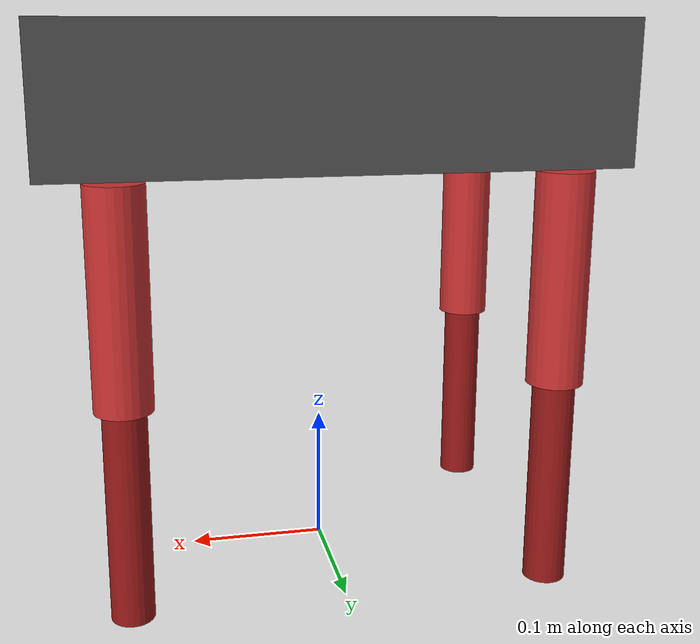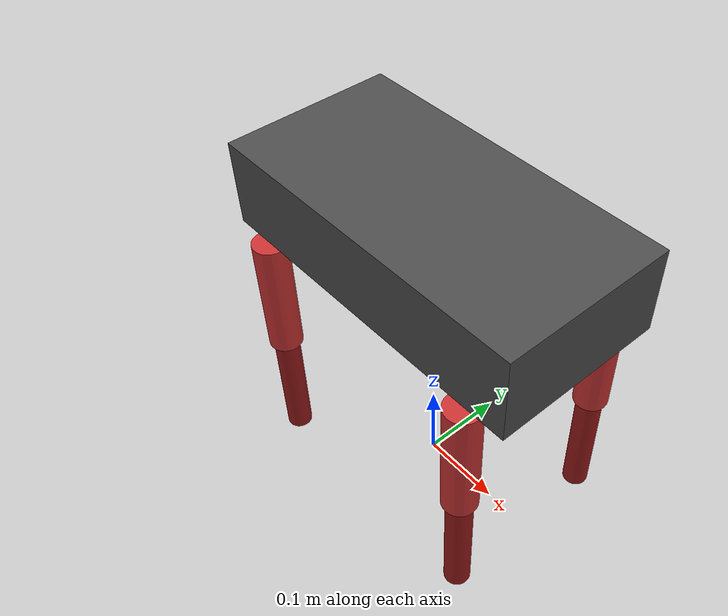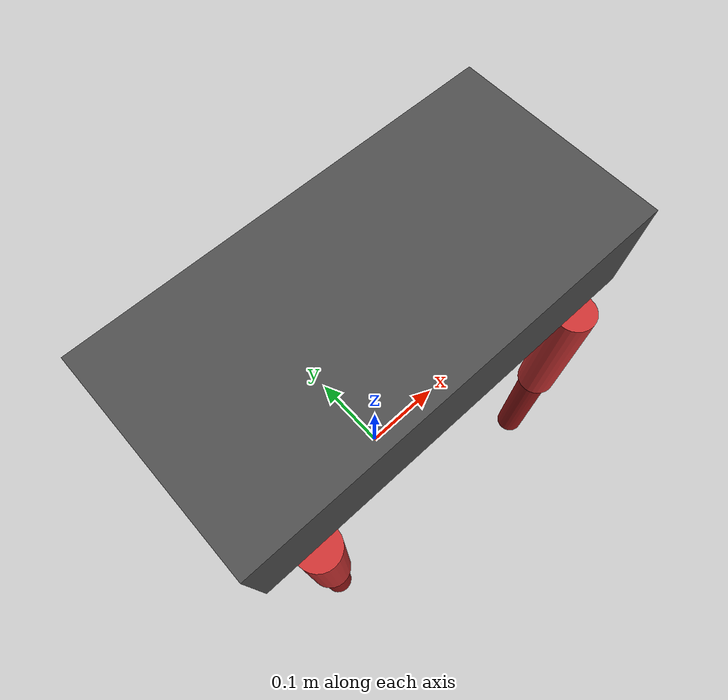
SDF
<?xml version="1.0"?>
<sdf version="1.8">
  <model name="mit_cheetah">
    <pose>0 0 0.35 0 0 0</pose>

    <link name="base_link">
      <inertial>
        <mass>10</mass>
        <inertia>
          <ixx>0.1</ixx><ixy>0</ixy><ixz>0</ixz>
          <iyy>0.5</iyy><iyz>0</iyz>
          <izz>0.5</izz>
        </inertia>
      </inertial>
      <visual name="body">
        <geometry>
          <box><size>0.4 0.2 0.1</size></box>
        </geometry>
        <material>
          <ambient>0.3 0.3 0.3 1</ambient>
          <diffuse>0.3 0.3 0.3 1</diffuse>
        </material>
      </visual>
      <collision name="body_collision">
        <geometry>
          <box><size>0.4 0.2 0.1</size></box>
        </geometry>
      </collision>
    </link>

    <!-- Front Right Leg -->
    <link name="fr_thigh">
      <pose>0.15 -0.1 -0.05 0 0 0</pose>
      <inertial>
        <mass>0.5</mass>
        <inertia>
          <ixx>0.001</ixx><ixy>0</ixy><ixz>0</ixz>
          <iyy>0.001</iyy><iyz>0</iyz>
          <izz>0.0005</izz>
        </inertia>
      </inertial>
      <visual name="thigh">
        <pose>0 0 -0.075 0 0 0</pose>
        <geometry>
          <cylinder><radius>0.02</radius><length>0.15</length></cylinder>
        </geometry>
        <material>
          <ambient>0.8 0.2 0.2 1</ambient>
          <diffuse>0.8 0.2 0.2 1</diffuse>
        </material>
      </visual>
      <collision name="thigh_collision">
        <pose>0 0 -0.075 0 0 0</pose>
        <geometry>
          <cylinder><radius>0.02</radius><length>0.15</length></cylinder>
        </geometry>
      </collision>
    </link>

    <link name="fr_shin">
      <pose>0.15 -0.1 -0.2 0 0 0</pose>
      <inertial>
        <mass>0.3</mass>
        <inertia>
          <ixx>0.001</ixx><ixy>0</ixy><ixz>0</ixz>
          <iyy>0.001</iyy><iyz>0</iyz>
          <izz>0.0003</izz>
        </inertia>
      </inertial>
      <visual name="shin">
        <pose>0 0 -0.075 0 0 0</pose>
        <geometry>
          <cylinder><radius>0.015</radius><length>0.15</length></cylinder>
        </geometry>
        <material>
          <ambient>0.6 0.1 0.1 1</ambient>
          <diffuse>0.6 0.1 0.1 1</diffuse>
        </material>
      </visual>
      <collision name="shin_collision">
        <pose>0 0 -0.075 0 0 0</pose>
        <geometry>
          <cylinder><radius>0.015</radius><length>0.15</length></cylinder>
        </geometry>
      </collision>
      <collision name="foot">
        <pose>0 0 -0.15 0 0 0</pose>
        <geometry>
          <sphere><radius>0.025</radius></sphere>
        </geometry>
        <surface>
          <friction>
            <ode>
              <mu>1.0</mu>
              <mu2>1.0</mu2>
            </ode>
          </friction>
        </surface>
      </collision>
    </link>

    <!-- Front Left Leg -->
    <link name="fl_thigh">
      <pose>0.15 0.1 -0.05 0 0 0</pose>
      <inertial>
        <mass>0.5</mass>
        <inertia>
          <ixx>0.001</ixx><ixy>0</ixy><ixz>0</ixz>
          <iyy>0.001</iyy><iyz>0</iyz>
          <izz>0.0005</izz>
        </inertia>
      </inertial>
      <visual name="thigh">
        <pose>0 0 -0.075 0 0 0</pose>
        <geometry>
          <cylinder><radius>0.02</radius><length>0.15</length></cylinder>
        </geometry>
        <material>
          <ambient>0.8 0.2 0.2 1</ambient>
          <diffuse>0.8 0.2 0.2 1</diffuse>
        </material>
      </visual>
      <collision name="thigh_collision">
        <pose>0 0 -0.075 0 0 0</pose>
        <geometry>
          <cylinder><radius>0.02</radius><length>0.15</length></cylinder>
        </geometry>
      </collision>
    </link>

    <link name="fl_shin">
      <pose>0.15 0.1 -0.2 0 0 0</pose>
      <inertial>
        <mass>0.3</mass>
        <inertia>
          <ixx>0.001</ixx><ixy>0</ixy><ixz>0</ixz>
          <iyy>0.001</iyy><iyz>0</iyz>
          <izz>0.0003</izz>
        </inertia>
      </inertial>
      <visual name="shin">
        <pose>0 0 -0.075 0 0 0</pose>
        <geometry>
          <cylinder><radius>0.015</radius><length>0.15</length></cylinder>
        </geometry>
        <material>
          <ambient>0.6 0.1 0.1 1</ambient>
          <diffuse>0.6 0.1 0.1 1</diffuse>
        </material>
      </visual>
      <collision name="shin_collision">
        <pose>0 0 -0.075 0 0 0</pose>
        <geometry>
          <cylinder><radius>0.015</radius><length>0.15</length></cylinder>
        </geometry>
      </collision>
      <collision name="foot">
        <pose>0 0 -0.15 0 0 0</pose>
        <geometry>
          <sphere><radius>0.025</radius></sphere>
        </geometry>
        <surface>
          <friction>
            <ode>
              <mu>1.0</mu>
              <mu2>1.0</mu2>
            </ode>
          </friction>
        </surface>
      </collision>
    </link>

    <!-- Rear Right Leg -->
    <link name="rr_thigh">
      <pose>-0.15 -0.1 -0.05 0 0 0</pose>
      <inertial>
        <mass>0.5</mass>
        <inertia>
          <ixx>0.001</ixx><ixy>0</ixy><ixz>0</ixz>
          <iyy>0.001</iyy><iyz>0</iyz>
          <izz>0.0005</izz>
        </inertia>
      </inertial>
      <visual name="thigh">
        <pose>0 0 -0.075 0 0 0</pose>
        <geometry>
          <cylinder><radius>0.02</radius><length>0.15</length></cylinder>
        </geometry>
        <material>
          <ambient>0.8 0.2 0.2 1</ambient>
          <diffuse>0.8 0.2 0.2 1</diffuse>
        </material>
      </visual>
      <collision name="thigh_collision">
        <pose>0 0 -0.075 0 0 0</pose>
        <geometry>
          <cylinder><radius>0.02</radius><length>0.15</length></cylinder>
        </geometry>
      </collision>
    </link>

    <link name="rr_shin">
      <pose>-0.15 -0.1 -0.2 0 0 0</pose>
      <inertial>
        <mass>0.3</mass>
        <inertia>
          <ixx>0.001</ixx><ixy>0</ixy><ixz>0</ixz>
          <iyy>0.001</iyy><iyz>0</iyz>
          <izz>0.0003</izz>
        </inertia>
      </inertial>
      <visual name="shin">
        <pose>0 0 -0.075 0 0 0</pose>
        <geometry>
          <cylinder><radius>0.015</radius><length>0.15</length></cylinder>
        </geometry>
        <material>
          <ambient>0.6 0.1 0.1 1</ambient>
          <diffuse>0.6 0.1 0.1 1</diffuse>
        </material>
      </visual>
      <collision name="shin_collision">
        <pose>0 0 -0.075 0 0 0</pose>
        <geometry>
          <cylinder><radius>0.015</radius><length>0.15</length></cylinder>
        </geometry>
      </collision>
      <collision name="foot">
        <pose>0 0 -0.15 0 0 0</pose>
        <geometry>
          <sphere><radius>0.025</radius></sphere>
        </geometry>
        <surface>
          <friction>
            <ode>
              <mu>1.0</mu>
              <mu2>1.0</mu2>
            </ode>
          </friction>
        </surface>
      </collision>
    </link>

    <!-- Rear Left Leg -->
    <link name="rl_thigh">
      <pose>-0.15 0.1 -0.05 0 0 0</pose>
      <inertial>
        <mass>0.5</mass>
        <inertia>
          <ixx>0.001</ixx><ixy>0</ixy><ixz>0</ixz>
          <iyy>0.001</iyy><iyz>0</iyz>
          <izz>0.0005</izz>
        </inertia>
      </inertial>
      <visual name="thigh">
        <pose>0 0 -0.075 0 0 0</pose>
        <geometry>
          <cylinder><radius>0.02</radius><length>0.15</length></cylinder>
        </geometry>
        <material>
          <ambient>0.8 0.2 0.2 1</ambient>
          <diffuse>0.8 0.2 0.2 1</diffuse>
        </material>
      </visual>
      <collision name="thigh_collision">
        <pose>0 0 -0.075 0 0 0</pose>
        <geometry>
          <cylinder><radius>0.02</radius><length>0.15</length></cylinder>
        </geometry>
      </collision>
    </link>

    <link name="rl_shin">
      <pose>-0.15 0.1 -0.2 0 0 0</pose>
      <inertial>
        <mass>0.3</mass>
        <inertia>
          <ixx>0.001</ixx><ixy>0</ixy><ixz>0</ixz>
          <iyy>0.001</iyy><iyz>0</iyz>
          <izz>0.0003</izz>
        </inertia>
      </inertial>
      <visual name="shin">
        <pose>0 0 -0.075 0 0 0</pose>
        <geometry>
          <cylinder><radius>0.015</radius><length>0.15</length></cylinder>
        </geometry>
        <material>
          <ambient>0.6 0.1 0.1 1</ambient>
          <diffuse>0.6 0.1 0.1 1</diffuse>
        </material>
      </visual>
      <collision name="shin_collision">
        <pose>0 0 -0.075 0 0 0</pose>
        <geometry>
          <cylinder><radius>0.015</radius><length>0.15</length></cylinder>
        </geometry>
      </collision>
      <collision name="foot">
        <pose>0 0 -0.15 0 0 0</pose>
        <geometry>
          <sphere><radius>0.025</radius></sphere>
        </geometry>
        <surface>
          <friction>
            <ode>
              <mu>1.0</mu>
              <mu2>1.0</mu2>
            </ode>
          </friction>
        </surface>
      </collision>
    </link>

    <!-- Hip Joints -->
    <joint name="fr_hip" type="revolute">
      <parent>base_link</parent>
      <child>fr_thigh</child>
      <axis><xyz>0 1 0</xyz><limit><lower>-1.0</lower><upper>1.0</upper></limit></axis>
    </joint>

    <joint name="fl_hip" type="revolute">
      <parent>base_link</parent>
      <child>fl_thigh</child>
      <axis><xyz>0 1 0</xyz><limit><lower>-1.0</lower><upper>1.0</upper></limit></axis>
    </joint>

    <joint name="rr_hip" type="revolute">
      <parent>base_link</parent>
      <child>rr_thigh</child>
      <axis><xyz>0 1 0</xyz><limit><lower>-1.0</lower><upper>1.0</upper></limit></axis>
    </joint>

    <joint name="rl_hip" type="revolute">
      <parent>base_link</parent>
      <child>rl_thigh</child>
      <axis><xyz>0 1 0</xyz><limit><lower>-1.0</lower><upper>1.0</upper></limit></axis>
    </joint>

    <!-- Knee Joints -->
    <joint name="fr_knee" type="revolute">
      <parent>fr_thigh</parent>
      <child>fr_shin</child>
      <axis><xyz>0 1 0</xyz><limit><lower>-2.5</lower><upper>0</upper></limit></axis>
    </joint>

    <joint name="fl_knee" type="revolute">
      <parent>fl_thigh</parent>
      <child>fl_shin</child>
      <axis><xyz>0 1 0</xyz><limit><lower>-2.5</lower><upper>0</upper></limit></axis>
    </joint>

    <joint name="rr_knee" type="revolute">
      <parent>rr_thigh</parent>
      <child>rr_shin</child>
      <axis><xyz>0 1 0</xyz><limit><lower>-2.5</lower><upper>0</upper></limit></axis>
    </joint>

    <joint name="rl_knee" type="revolute">
      <parent>rl_thigh</parent>
      <child>rl_shin</child>
      <axis><xyz>0 1 0</xyz><limit><lower>-2.5</lower><upper>0</upper></limit></axis>
    </joint>

    <!-- Control Plugins -->
    <plugin filename="gz-sim-joint-state-publisher-system" name="gz::sim::systems::JointStatePublisher"/>

    <plugin filename="gz-sim-joint-position-controller-system" name="gz::sim::systems::JointPositionController">
      <joint_name>fr_hip</joint_name>
      <topic>/model/mit_cheetah/joint/fr_hip/cmd_pos</topic>
      <p_gain>200</p_gain>
      <i_gain>10</i_gain>
      <d_gain>20</d_gain>
    </plugin>
    <plugin filename="gz-sim-joint-position-controller-system" name="gz::sim::systems::JointPositionController">
      <joint_name>fr_knee</joint_name>
      <topic>/model/mit_cheetah/joint/fr_knee/cmd_pos</topic>
      <p_gain>200</p_gain>
      <i_gain>10</i_gain>
      <d_gain>20</d_gain>
    </plugin>

    <plugin filename="gz-sim-joint-position-controller-system" name="gz::sim::systems::JointPositionController">
      <joint_name>fl_hip</joint_name>
      <topic>/model/mit_cheetah/joint/fl_hip/cmd_pos</topic>
      <p_gain>200</p_gain>
      <i_gain>10</i_gain>
      <d_gain>20</d_gain>
    </plugin>
    <plugin filename="gz-sim-joint-position-controller-system" name="gz::sim::systems::JointPositionController">
      <joint_name>fl_knee</joint_name>
      <topic>/model/mit_cheetah/joint/fl_knee/cmd_pos</topic>
      <p_gain>200</p_gain>
      <i_gain>10</i_gain>
      <d_gain>20</d_gain>
    </plugin>

    <plugin filename="gz-sim-joint-position-controller-system" name="gz::sim::systems::JointPositionController">
      <joint_name>rr_hip</joint_name>
      <topic>/model/mit_cheetah/joint/rr_hip/cmd_pos</topic>
      <p_gain>200</p_gain>
      <i_gain>10</i_gain>
      <d_gain>20</d_gain>
    </plugin>
    <plugin filename="gz-sim-joint-position-controller-system" name="gz::sim::systems::JointPositionController">
      <joint_name>rr_knee</joint_name>
      <topic>/model/mit_cheetah/joint/rr_knee/cmd_pos</topic>
      <p_gain>200</p_gain>
      <i_gain>10</i_gain>
      <d_gain>20</d_gain>
    </plugin>

    <plugin filename="gz-sim-joint-position-controller-system" name="gz::sim::systems::JointPositionController">
      <joint_name>rl_hip</joint_name>
      <topic>/model/mit_cheetah/joint/rl_hip/cmd_pos</topic>
      <p_gain>200</p_gain>
      <i_gain>10</i_gain>
      <d_gain>20</d_gain>
    </plugin>
    <plugin filename="gz-sim-joint-position-controller-system" name="gz::sim::systems::JointPositionController">
      <joint_name>rl_knee</joint_name>
      <topic>/model/mit_cheetah/joint/rl_knee/cmd_pos</topic>
      <p_gain>200</p_gain>
      <i_gain>10</i_gain>
      <d_gain>20</d_gain>
    </plugin>

  </model>
</sdf>
